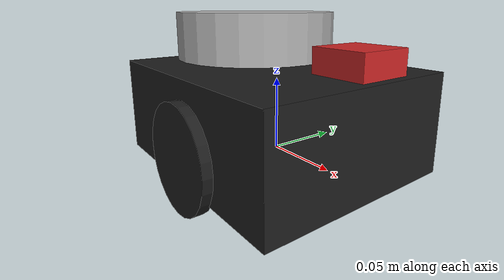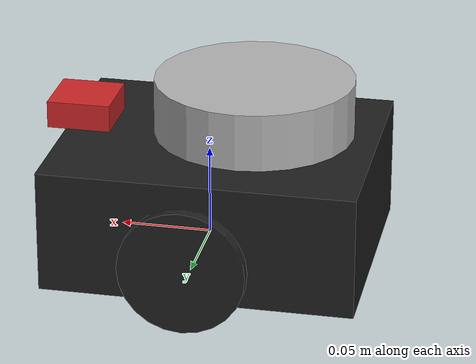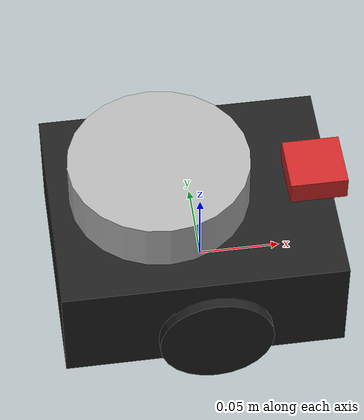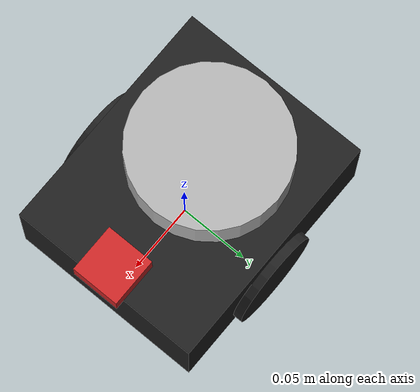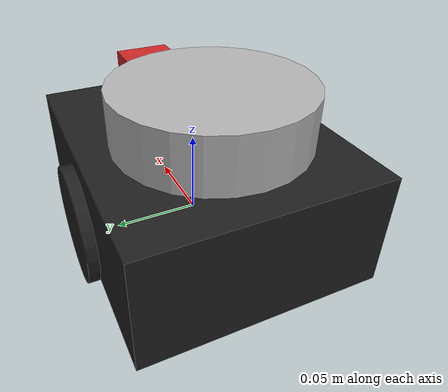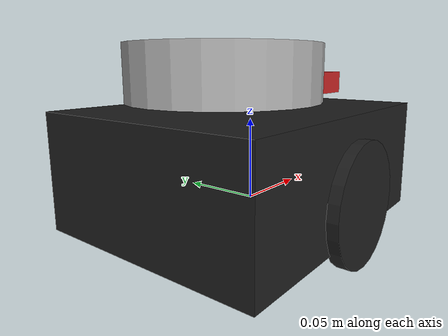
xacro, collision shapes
<?xml version='1.0'?>

<robot name="usafabot" xmlns:xacro="http://www.ros.org/wiki/xacro">

  <xacro:include filename="$(find usafabot_description)/urdf/common_properties.xacro" />
  <xacro:include filename="$(find usafabot_description)/urdf/usafabot.gazebo_multi.xacro" />

   <link name="base_footprint"/>

   <joint name="base_joint" type="fixed">
    <parent link="base_footprint"/>
    <child link="base_link"/>
    <origin xyz="0.0 0.0 0.010" rpy="0 0 1.5708"/>
  </joint>

   <!-- Base Link -->
  <link name="base_link">
    <visual>
      <origin xyz="0 0 0" rpy="1.570795 0 0" />
      <geometry>
          <mesh filename="package://usafabot_description/meshes/bottom_chassis.stl" scale=".001 .001 .001"/>
      </geometry>
      <material name="black" />
    </visual>

    <!-- Base collision -->
    <collision>
      <origin xyz="0 0.006 0.014" rpy="0 0 0" />
      <geometry>
        <box size="0.14046 0.17219 0.0679"/>
      </geometry>
    </collision>

    <!-- Base inertial -->
    <inertial>
    <mass value="5"/>
    <inertia ixx="0.13" ixy="0.0" ixz="0.0"
             iyy="0.21" iyz="0.0" izz="0.13"/>
    </inertial>

  </link>

    <joint name="caster_back_link" type="fixed">
      <parent link="base_link"/>
      <child link="caster_back_link"/>
      <origin xyz="0 .064 -0.0175" rpy="0 0 0" />
    </joint>

    <link name="caster_back_link">
     <collision>
      <origin xyz="0 0.001 0" rpy="0 0 0" />
      <geometry>
        <sphere radius=".017"/>
      </geometry>
     </collision>

     <inertial>
      <origin xyz="0 0 0" />
      <mass value="0.005"/>
      <inertia ixx="0.001" ixy="0.0" ixz="0.0"
               iyy="0.001" iyz="0.0" izz="0.001"/>
      </inertial>
    </link>

    <joint name="caster_front_joint" type="fixed">
      <parent link="base_link"/>
      <child link="caster_front_link"/>
      <origin xyz="0 -.044 -0.0175" rpy="0 0 0" />
    </joint>

    <link name="caster_front_link">
     <collision>
      <origin xyz="0 0.001 0" rpy="0 0 0" />
      <geometry>
        <sphere radius=".017"/>
      </geometry>
     </collision>

     <inertial>
      <origin xyz="0 0 0" />
      <mass value="0.005"/>
      <inertia ixx="0.001" ixy="0.0" ixz="0.0"
               iyy="0.001" iyz="0.0" izz="0.001"/>
      </inertial>
    </link>

  <!-- Top Chassis -->
  <link name="top_chassis">
    <visual>
      <origin xyz="0 0 0" rpy="0 0 0" />
      <geometry>
        <mesh filename="package://usafabot_description/meshes/top_chassis.stl" scale=".001 .001 .001"/>
      </geometry>
      <material name="blue"/>
    </visual>

    <!-- Top chassis collision -->

    <!-- Top chassis inertial -->
    <inertial>
    <mass value="0.5"/>
    <inertia ixx="0.01" ixy="0.0" ixz="0.0"
             iyy="0.005" iyz="0.0" izz="0.005"/>
    </inertial>

  </link>

  <joint name="joint_top_chassis" type="fixed">
    <parent link="base_link"/>
    <child link="top_chassis"/>
    <origin xyz="0 0 0" rpy="0 0 0" />
  </joint>

  <!-- Left Wheel -->

    <joint name="wheel_left_joint" type="continuous">
    <parent link="base_link"/>
    <child link="left_wheel_link"/>
    <origin xyz=".0728 0 0" rpy="0 0 0" />
    <axis xyz="1 0 0" />
  </joint>

  <link name="left_wheel_link">
    <visual>
      <origin xyz="0 0 0" rpy="0 0 0" />
      <geometry>
        <mesh filename="package://usafabot_description/meshes/rviz_wheel1.stl" scale=".001 .001 .001"/>
      </geometry>
      <material name="black"/>
    </visual>

    <!-- Wheel collision -->
    <collision>
      <origin xyz="0 0 0" rpy="0 1.570795 0" />
      <geometry>
        <cylinder length=".008" radius="0.035" />
      </geometry>
    </collision>

    <!-- Wheel inertial -->
    <inertial>
    <mass value="0.5"/>
    <inertia ixx="0.01" ixy="0.0" ixz="0.0"
             iyy="0.005" iyz="0.0" izz="0.005"/>
    </inertial>

  </link>

  <!-- Right Wheel -->

  <joint name="wheel_right_joint" type="continuous">
    <parent link="base_link"/>
    <child link="right_wheel_link"/>
    <origin xyz="-.0728 0 0" rpy="0 0 0" />
    <axis xyz="1 0 0" />
  </joint>

  <link name="right_wheel_link">
    <visual>
      <origin xyz="0 0 0" rpy="0 3.1415 0" />
      <geometry>
        <mesh filename="package://usafabot_description/meshes/rviz_wheel2.stl" scale=".001 .001 .001"/>
      </geometry>
      <material name="black"/>
    </visual>

    <!-- Wheel collision -->
    <collision>
      <origin xyz="0 0 0" rpy="0 1.570795 0" />
      <geometry>
        <cylinder length=".008" radius="0.035" />
      </geometry>
    </collision>

    <!-- Wheel inertial -->
    <inertial>
    <mass value="0.5"/>
    <inertia ixx="0.01" ixy="0.0" ixz="0.0"
             iyy="0.005" iyz="0.0" izz="0.005"/>
    </inertial>

  </link>

  <!-- LIDAR -->
    <joint name="scan_joint" type="fixed">
    <parent link="base_link"/>
    <child link="base_scan"/>
    <origin xyz="0 .04 0.075" rpy="0 0 -1.5708" />
  </joint>

  <link name="base_scan">
    <visual>
      <origin xyz="0 0 0.0" rpy="0 0 0"/>
      <geometry>
        <mesh filename="package://usafabot_description/meshes/lds.stl" scale=".001 .001 .001"/>
      </geometry>
      <material name="dark"/>
    </visual>

    <collision>
      <origin xyz="0.015 0 -0.0065" rpy="0 0 0"/>
      <geometry>
        <cylinder length="0.0315" radius="0.055"/>
      </geometry>
    </collision>

    <inertial>
      <mass value="0.114" />
      <origin xyz="0 0 0" />
      <inertia ixx="0.001" ixy="0.0" ixz="0.0"
               iyy="0.001" iyz="0.0"
               izz="0.001" />
    </inertial>
  </link>

  <!-- CAMERA -->
  <joint name="camera_joint" type="fixed">
   <axis xyz="0 1 0" />
   <origin xyz="0 -0.07 0.06" rpy="0 0 -1.57"/>
   <parent link="base_link" />
   <child link="camera_link" />
   </joint>

   <link name="camera_link">
    <collision>
      <origin xyz="0 0 0" rpy="0 0 0"/>
      <geometry>
    <box size=".035 .035 .015"/>
      </geometry>
    </collision>

    <visual>
      <origin xyz="0 0 0" rpy="0 0 0"/>
      <geometry>
    <box size=".035 .035 .015"/>
      </geometry>
      <material name="red"/>
    </visual>

    <inertial>
      <mass value="1e-5" />
      <origin xyz="0 0 0" rpy="0 0 0"/>
      <inertia ixx="1e-6" ixy="0" ixz="0" iyy="1e-6" iyz="0" izz="1e-6" />
    </inertial>
  </link>

   <!-- IMU -->
   <joint name="imu_joint" type="fixed">
    <parent link="base_link"/>
    <child link="imu_link"/>
    <origin xyz="0 0 0.068" rpy="0 0 -1.57"/>  </joint>

  <link name="imu_link"/>

</robot>
